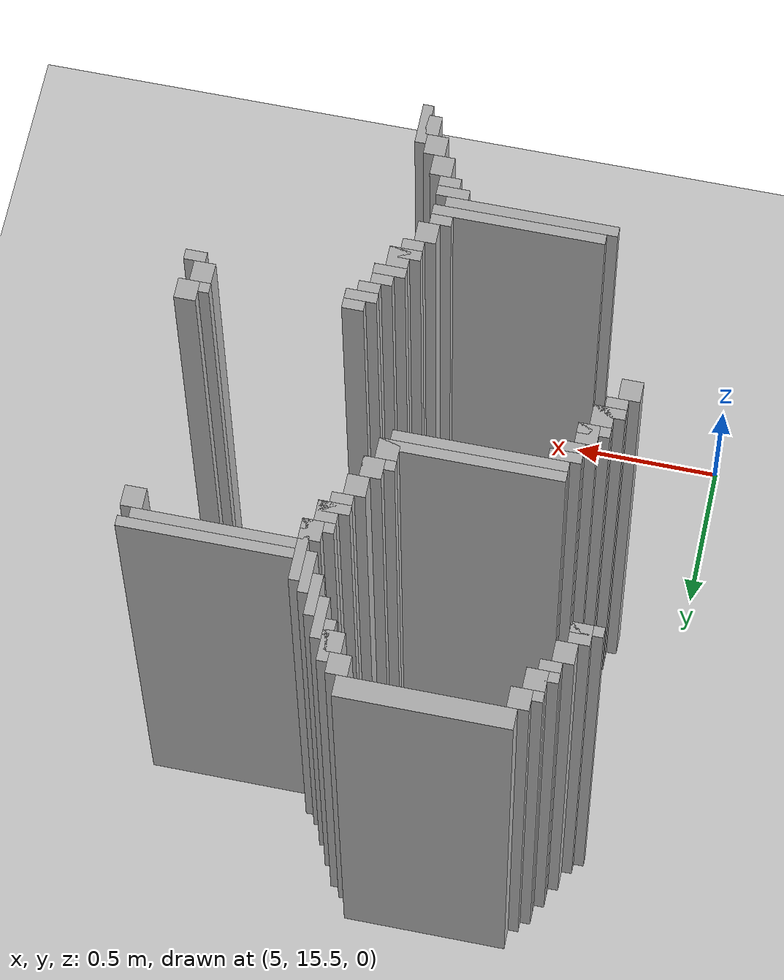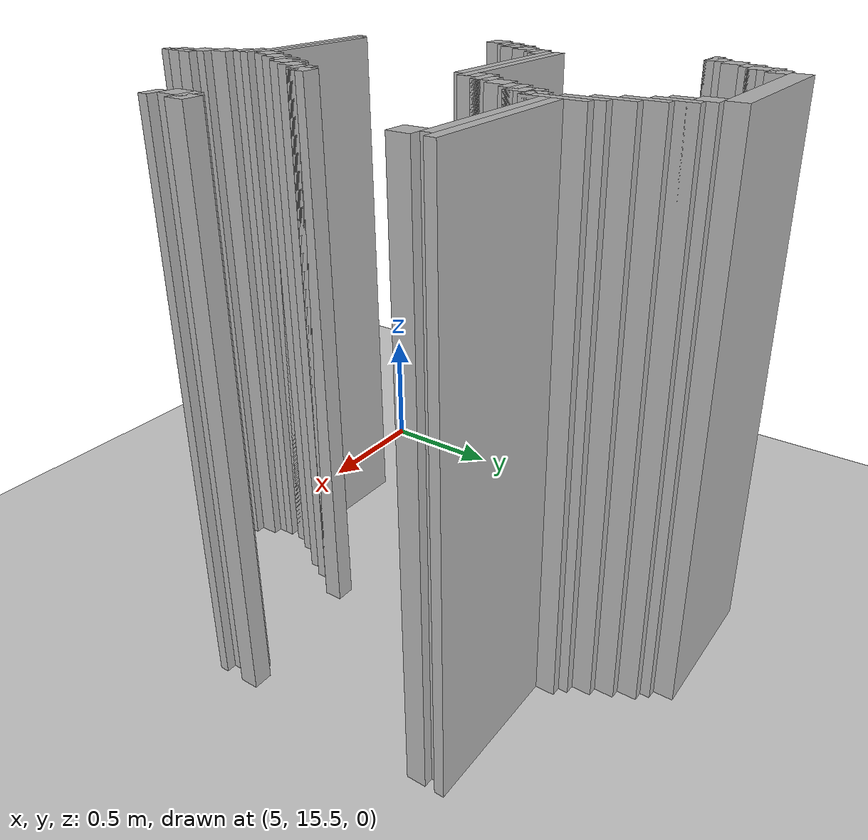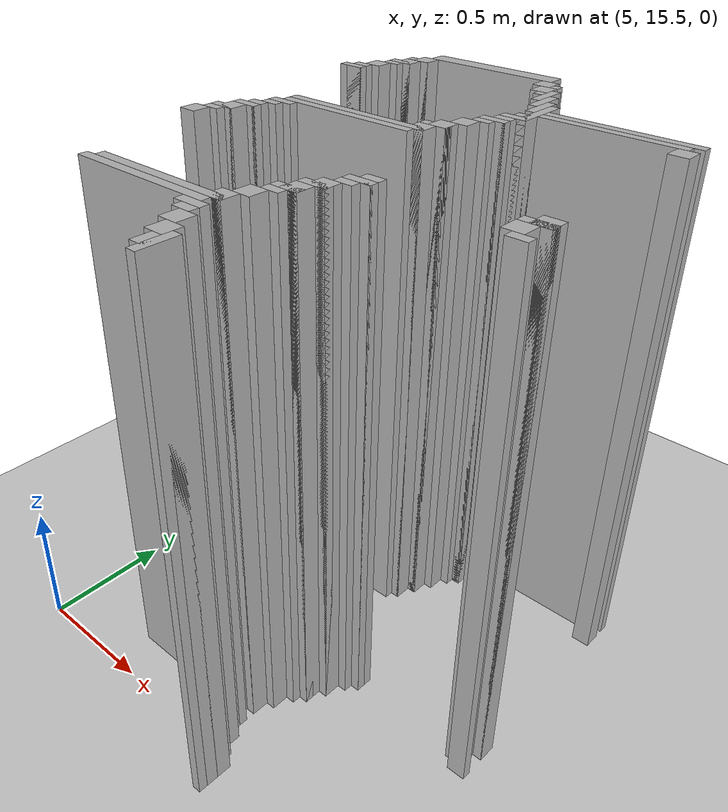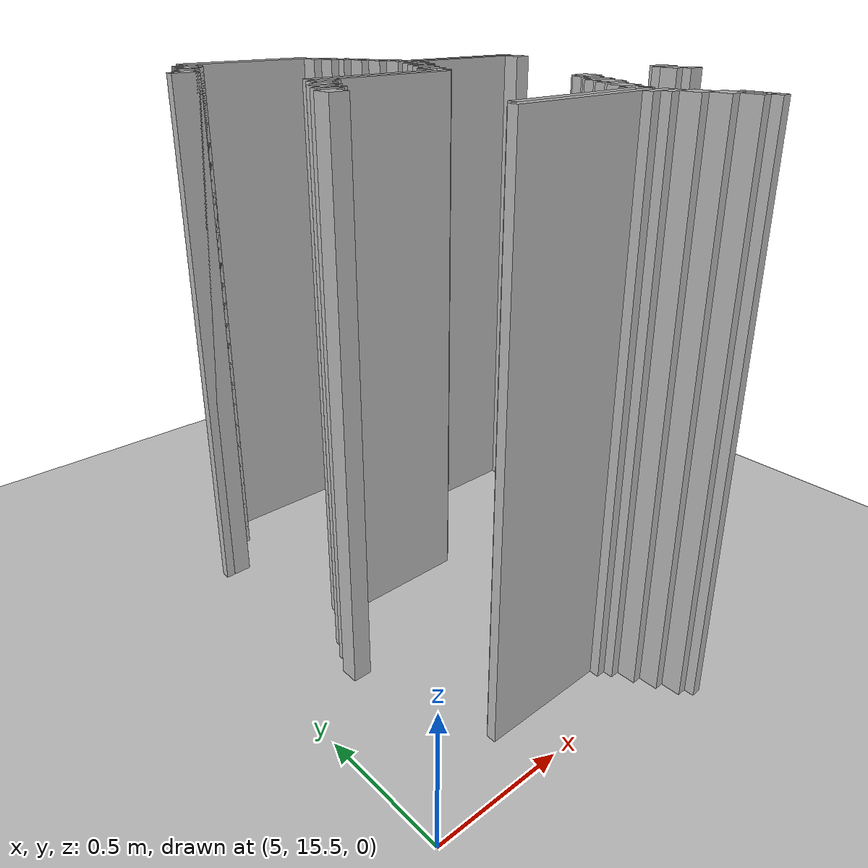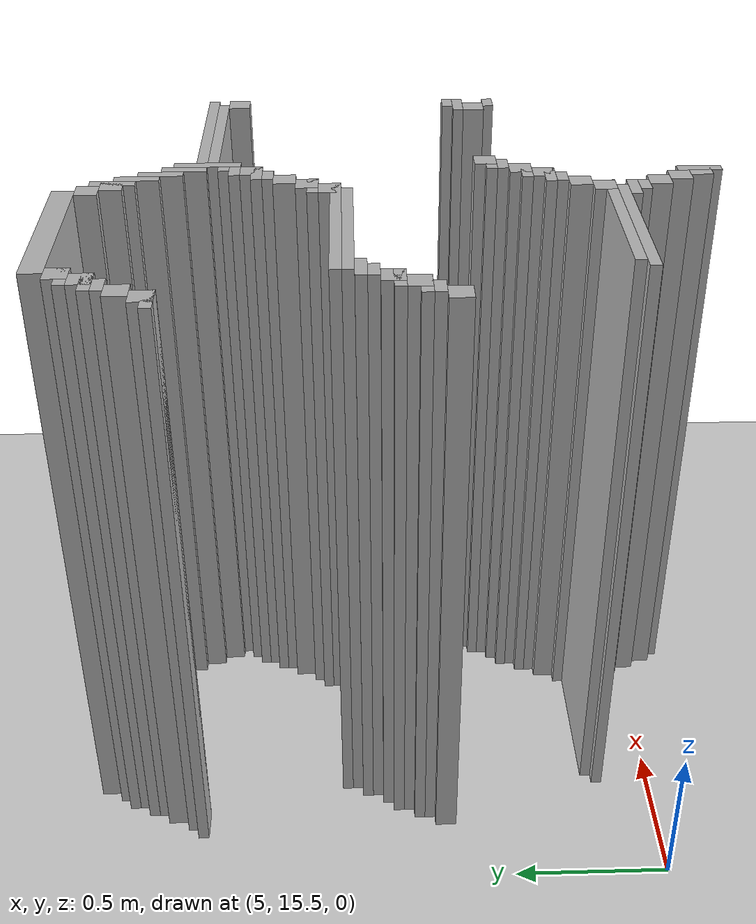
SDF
<sdf version="1.6">
 <world name="slam_world">
  <model name="ground_plane">
   <static>true</static>
   <link name="link">
    <collision name="collision">
     <geometry><plane><normal>0 0 1</normal><size>100 100</size></plane></geometry>
    </collision>
    <visual name="visual">
     <geometry><plane><normal>0 0 1</normal><size>100 100</size></plane></geometry>
     <material>
      <ambient>0.8 0.8 0.8 1</ambient>
      <diffuse>0.8 0.8 0.8 1</diffuse>
      <specular>0.8 0.8 0.8 1</specular>
     </material>
    </visual>
   </link>
  </model>
  <model name="wall_3">
   <static>true</static>
   <pose>5.672853828306264 17.366589327146173 1.0 0 0 0</pose>
   <link name="link">
    <collision name="collision">
     <geometry><box><size>0.5568445475638051 0.06960556844547564 2.0</size></box></geometry>
    </collision>
    <visual name="visual">
     <geometry><box><size>0.5568445475638051 0.06960556844547564 2.0</size></box></geometry>
     <material><ambient>0.5 0.5 0.5 1</ambient><diffuse>0.7 0.7 0.7 1</diffuse></material>
    </visual>
   </link>
  </model>
  <model name="wall_17">
   <static>true</static>
   <pose>5.3944315545243615 17.296983758700694 1.0 0 0 0</pose>
   <link name="link">
    <collision name="collision">
     <geometry><box><size>0.06960556844547564 0.06960556844547564 2.0</size></box></geometry>
    </collision>
    <visual name="visual">
     <geometry><box><size>0.06960556844547564 0.06960556844547564 2.0</size></box></geometry>
     <material><ambient>0.5 0.5 0.5 1</ambient><diffuse>0.7 0.7 0.7 1</diffuse></material>
    </visual>
   </link>
  </model>
  <model name="wall_18">
   <static>true</static>
   <pose>5.951276102088166 17.296983758700694 1.0 0 0 0</pose>
   <link name="link">
    <collision name="collision">
     <geometry><box><size>0.06960556844547564 0.06960556844547564 2.0</size></box></geometry>
    </collision>
    <visual name="visual">
     <geometry><box><size>0.06960556844547564 0.06960556844547564 2.0</size></box></geometry>
     <material><ambient>0.5 0.5 0.5 1</ambient><diffuse>0.7 0.7 0.7 1</diffuse></material>
    </visual>
   </link>
  </model>
  <model name="wall_37">
   <static>true</static>
   <pose>5.377030162412993 17.279582366589327 1.0 0 0 0</pose>
   <link name="link">
    <collision name="collision">
     <geometry><box><size>0.10440835266821345 0.03480278422273782 2.0</size></box></geometry>
    </collision>
    <visual name="visual">
     <geometry><box><size>0.10440835266821345 0.03480278422273782 2.0</size></box></geometry>
     <material><ambient>0.5 0.5 0.5 1</ambient><diffuse>0.7 0.7 0.7 1</diffuse></material>
    </visual>
   </link>
  </model>
  <model name="wall_38">
   <static>true</static>
   <pose>6.003480278422273 17.22737819025522 1.0 0 0 0</pose>
   <link name="link">
    <collision name="collision">
     <geometry><box><size>0.03480278422273782 0.13921113689095127 2.0</size></box></geometry>
    </collision>
    <visual name="visual">
     <geometry><box><size>0.03480278422273782 0.13921113689095127 2.0</size></box></geometry>
     <material><ambient>0.5 0.5 0.5 1</ambient><diffuse>0.7 0.7 0.7 1</diffuse></material>
    </visual>
   </link>
  </model>
  <model name="wall_57">
   <static>true</static>
   <pose>5.359628770301624 17.22737819025522 1.0 0 0 0</pose>
   <link name="link">
    <collision name="collision">
     <geometry><box><size>0.06960556844547564 0.06960556844547564 2.0</size></box></geometry>
    </collision>
    <visual name="visual">
     <geometry><box><size>0.06960556844547564 0.06960556844547564 2.0</size></box></geometry>
     <material><ambient>0.5 0.5 0.5 1</ambient><diffuse>0.7 0.7 0.7 1</diffuse></material>
    </visual>
   </link>
  </model>
  <model name="wall_58">
   <static>true</static>
   <pose>5.986078886310905 17.22737819025522 1.0 0 0 0</pose>
   <link name="link">
    <collision name="collision">
     <geometry><box><size>0.06960556844547564 0.06960556844547564 2.0</size></box></geometry>
    </collision>
    <visual name="visual">
     <geometry><box><size>0.06960556844547564 0.06960556844547564 2.0</size></box></geometry>
     <material><ambient>0.5 0.5 0.5 1</ambient><diffuse>0.7 0.7 0.7 1</diffuse></material>
    </visual>
   </link>
  </model>
  <model name="wall_77">
   <static>true</static>
   <pose>5.342227378190255 17.209976798143853 1.0 0 0 0</pose>
   <link name="link">
    <collision name="collision">
     <geometry><box><size>0.10440835266821345 0.03480278422273782 2.0</size></box></geometry>
    </collision>
    <visual name="visual">
     <geometry><box><size>0.10440835266821345 0.03480278422273782 2.0</size></box></geometry>
     <material><ambient>0.5 0.5 0.5 1</ambient><diffuse>0.7 0.7 0.7 1</diffuse></material>
    </visual>
   </link>
  </model>
  <model name="wall_78">
   <static>true</static>
   <pose>6.038283062645012 17.157772621809745 1.0 0 0 0</pose>
   <link name="link">
    <collision name="collision">
     <geometry><box><size>0.03480278422273782 0.13921113689095127 2.0</size></box></geometry>
    </collision>
    <visual name="visual">
     <geometry><box><size>0.03480278422273782 0.13921113689095127 2.0</size></box></geometry>
     <material><ambient>0.5 0.5 0.5 1</ambient><diffuse>0.7 0.7 0.7 1</diffuse></material>
    </visual>
   </link>
  </model>
  <model name="wall_94">
   <static>true</static>
   <pose>5.324825986078886 17.17517401392111 1.0 0 0 0</pose>
   <link name="link">
    <collision name="collision">
     <geometry><box><size>0.06960556844547564 0.03480278422273782 2.0</size></box></geometry>
    </collision>
    <visual name="visual">
     <geometry><box><size>0.06960556844547564 0.03480278422273782 2.0</size></box></geometry>
     <material><ambient>0.5 0.5 0.5 1</ambient><diffuse>0.7 0.7 0.7 1</diffuse></material>
    </visual>
   </link>
  </model>
  <model name="wall_107">
   <static>true</static>
   <pose>5.290023201856148 17.122969837587007 1.0 0 0 0</pose>
   <link name="link">
    <collision name="collision">
     <geometry><box><size>0.06960556844547564 0.06960556844547564 2.0</size></box></geometry>
    </collision>
    <visual name="visual">
     <geometry><box><size>0.06960556844547564 0.06960556844547564 2.0</size></box></geometry>
     <material><ambient>0.5 0.5 0.5 1</ambient><diffuse>0.7 0.7 0.7 1</diffuse></material>
    </visual>
   </link>
  </model>
  <model name="wall_108">
   <static>true</static>
   <pose>6.073085846867749 17.08816705336427 1.0 0 0 0</pose>
   <link name="link">
    <collision name="collision">
     <geometry><box><size>0.03480278422273782 0.13921113689095127 2.0</size></box></geometry>
    </collision>
    <visual name="visual">
     <geometry><box><size>0.03480278422273782 0.13921113689095127 2.0</size></box></geometry>
     <material><ambient>0.5 0.5 0.5 1</ambient><diffuse>0.7 0.7 0.7 1</diffuse></material>
    </visual>
   </link>
  </model>
  <model name="wall_127">
   <static>true</static>
   <pose>5.25522041763341 17.053364269141532 1.0 0 0 0</pose>
   <link name="link">
    <collision name="collision">
     <geometry><box><size>0.06960556844547564 0.06960556844547564 2.0</size></box></geometry>
    </collision>
    <visual name="visual">
     <geometry><box><size>0.06960556844547564 0.06960556844547564 2.0</size></box></geometry>
     <material><ambient>0.5 0.5 0.5 1</ambient><diffuse>0.7 0.7 0.7 1</diffuse></material>
    </visual>
   </link>
  </model>
  <model name="wall_128">
   <static>true</static>
   <pose>6.107888631090487 17.01856148491879 1.0 0 0 0</pose>
   <link name="link">
    <collision name="collision">
     <geometry><box><size>0.03480278422273782 0.13921113689095127 2.0</size></box></geometry>
    </collision>
    <visual name="visual">
     <geometry><box><size>0.03480278422273782 0.13921113689095127 2.0</size></box></geometry>
     <material><ambient>0.5 0.5 0.5 1</ambient><diffuse>0.7 0.7 0.7 1</diffuse></material>
    </visual>
   </link>
  </model>
  <model name="wall_147">
   <static>true</static>
   <pose>5.237819025522041 17.035962877030162 1.0 0 0 0</pose>
   <link name="link">
    <collision name="collision">
     <geometry><box><size>0.10440835266821345 0.03480278422273782 2.0</size></box></geometry>
    </collision>
    <visual name="visual">
     <geometry><box><size>0.10440835266821345 0.03480278422273782 2.0</size></box></geometry>
     <material><ambient>0.5 0.5 0.5 1</ambient><diffuse>0.7 0.7 0.7 1</diffuse></material>
    </visual>
   </link>
  </model>
  <model name="wall_148">
   <static>true</static>
   <pose>6.142691415313225 16.948955916473317 1.0 0 0 0</pose>
   <link name="link">
    <collision name="collision">
     <geometry><box><size>0.03480278422273782 0.2088167053364269 2.0</size></box></geometry>
    </collision>
    <visual name="visual">
     <geometry><box><size>0.03480278422273782 0.2088167053364269 2.0</size></box></geometry>
     <material><ambient>0.5 0.5 0.5 1</ambient><diffuse>0.7 0.7 0.7 1</diffuse></material>
    </visual>
   </link>
  </model>
  <model name="wall_175">
   <static>true</static>
   <pose>6.438515081206496 16.966357308584687 1.0 0 0 0</pose>
   <link name="link">
    <collision name="collision">
     <geometry><box><size>0.5568445475638051 0.03480278422273782 2.0</size></box></geometry>
    </collision>
    <visual name="visual">
     <geometry><box><size>0.5568445475638051 0.03480278422273782 2.0</size></box></geometry>
     <material><ambient>0.5 0.5 0.5 1</ambient><diffuse>0.7 0.7 0.7 1</diffuse></material>
    </visual>
   </link>
  </model>
  <model name="wall_186">
   <static>true</static>
   <pose>6.421113689095128 16.93155452436195 1.0 0 0 0</pose>
   <link name="link">
    <collision name="collision">
     <geometry><box><size>0.5220417633410672 0.03480278422273782 2.0</size></box></geometry>
    </collision>
    <visual name="visual">
     <geometry><box><size>0.5220417633410672 0.03480278422273782 2.0</size></box></geometry>
     <material><ambient>0.5 0.5 0.5 1</ambient><diffuse>0.7 0.7 0.7 1</diffuse></material>
    </visual>
   </link>
  </model>
  <model name="wall_195">
   <static>true</static>
   <pose>6.125290023201856 16.87935034802784 1.0 0 0 0</pose>
   <link name="link">
    <collision name="collision">
     <geometry><box><size>0.06960556844547564 0.06960556844547564 2.0</size></box></geometry>
    </collision>
    <visual name="visual">
     <geometry><box><size>0.06960556844547564 0.06960556844547564 2.0</size></box></geometry>
     <material><ambient>0.5 0.5 0.5 1</ambient><diffuse>0.7 0.7 0.7 1</diffuse></material>
    </visual>
   </link>
  </model>
  <model name="wall_196">
   <static>true</static>
   <pose>6.682134570765661 16.87935034802784 1.0 0 0 0</pose>
   <link name="link">
    <collision name="collision">
     <geometry><box><size>0.06960556844547564 0.06960556844547564 2.0</size></box></geometry>
    </collision>
    <visual name="visual">
     <geometry><box><size>0.06960556844547564 0.06960556844547564 2.0</size></box></geometry>
     <material><ambient>0.5 0.5 0.5 1</ambient><diffuse>0.7 0.7 0.7 1</diffuse></material>
    </visual>
   </link>
  </model>
  <model name="wall_205">
   <static>true</static>
   <pose>6.107888631090487 16.86194895591647 1.0 0 0 0</pose>
   <link name="link">
    <collision name="collision">
     <geometry><box><size>0.10440835266821345 0.03480278422273782 2.0</size></box></geometry>
    </collision>
    <visual name="visual">
     <geometry><box><size>0.10440835266821345 0.03480278422273782 2.0</size></box></geometry>
     <material><ambient>0.5 0.5 0.5 1</ambient><diffuse>0.7 0.7 0.7 1</diffuse></material>
    </visual>
   </link>
  </model>
  <model name="wall_215">
   <static>true</static>
   <pose>6.090487238979118 16.809744779582367 1.0 0 0 0</pose>
   <link name="link">
    <collision name="collision">
     <geometry><box><size>0.06960556844547564 0.06960556844547564 2.0</size></box></geometry>
    </collision>
    <visual name="visual">
     <geometry><box><size>0.06960556844547564 0.06960556844547564 2.0</size></box></geometry>
     <material><ambient>0.5 0.5 0.5 1</ambient><diffuse>0.7 0.7 0.7 1</diffuse></material>
    </visual>
   </link>
  </model>
  <model name="wall_225">
   <static>true</static>
   <pose>6.073085846867749 16.792343387470996 1.0 0 0 0</pose>
   <link name="link">
    <collision name="collision">
     <geometry><box><size>0.10440835266821345 0.03480278422273782 2.0</size></box></geometry>
    </collision>
    <visual name="visual">
     <geometry><box><size>0.10440835266821345 0.03480278422273782 2.0</size></box></geometry>
     <material><ambient>0.5 0.5 0.5 1</ambient><diffuse>0.7 0.7 0.7 1</diffuse></material>
    </visual>
   </link>
  </model>
  <model name="wall_234">
   <static>true</static>
   <pose>6.05568445475638 16.75754060324826 1.0 0 0 0</pose>
   <link name="link">
    <collision name="collision">
     <geometry><box><size>0.06960556844547564 0.03480278422273782 2.0</size></box></geometry>
    </collision>
    <visual name="visual">
     <geometry><box><size>0.06960556844547564 0.03480278422273782 2.0</size></box></geometry>
     <material><ambient>0.5 0.5 0.5 1</ambient><diffuse>0.7 0.7 0.7 1</diffuse></material>
    </visual>
   </link>
  </model>
  <model name="wall_241">
   <static>true</static>
   <pose>6.020881670533642 16.70533642691415 1.0 0 0 0</pose>
   <link name="link">
    <collision name="collision">
     <geometry><box><size>0.06960556844547564 0.06960556844547564 2.0</size></box></geometry>
    </collision>
    <visual name="visual">
     <geometry><box><size>0.06960556844547564 0.06960556844547564 2.0</size></box></geometry>
     <material><ambient>0.5 0.5 0.5 1</ambient><diffuse>0.7 0.7 0.7 1</diffuse></material>
    </visual>
   </link>
  </model>
  <model name="wall_251">
   <static>true</static>
   <pose>5.986078886310905 16.635730858468676 1.0 0 0 0</pose>
   <link name="link">
    <collision name="collision">
     <geometry><box><size>0.06960556844547564 0.06960556844547564 2.0</size></box></geometry>
    </collision>
    <visual name="visual">
     <geometry><box><size>0.06960556844547564 0.06960556844547564 2.0</size></box></geometry>
     <material><ambient>0.5 0.5 0.5 1</ambient><diffuse>0.7 0.7 0.7 1</diffuse></material>
    </visual>
   </link>
  </model>
  <model name="wall_261">
   <static>true</static>
   <pose>5.968677494199536 16.61832946635731 1.0 0 0 0</pose>
   <link name="link">
    <collision name="collision">
     <geometry><box><size>0.10440835266821345 0.03480278422273782 2.0</size></box></geometry>
    </collision>
    <visual name="visual">
     <geometry><box><size>0.10440835266821345 0.03480278422273782 2.0</size></box></geometry>
     <material><ambient>0.5 0.5 0.5 1</ambient><diffuse>0.7 0.7 0.7 1</diffuse></material>
    </visual>
   </link>
  </model>
  <model name="wall_270">
   <static>true</static>
   <pose>5.951276102088166 16.5661252900232 1.0 0 0 0</pose>
   <link name="link">
    <collision name="collision">
     <geometry><box><size>0.06960556844547564 0.06960556844547564 2.0</size></box></geometry>
    </collision>
    <visual name="visual">
     <geometry><box><size>0.06960556844547564 0.06960556844547564 2.0</size></box></geometry>
     <material><ambient>0.5 0.5 0.5 1</ambient><diffuse>0.7 0.7 0.7 1</diffuse></material>
    </visual>
   </link>
  </model>
  <model name="wall_278">
   <static>true</static>
   <pose>5.690255220417633 16.54872389791183 1.0 0 0 0</pose>
   <link name="link">
    <collision name="collision">
     <geometry><box><size>0.5916473317865429 0.03480278422273782 2.0</size></box></geometry>
    </collision>
    <visual name="visual">
     <geometry><box><size>0.5916473317865429 0.03480278422273782 2.0</size></box></geometry>
     <material><ambient>0.5 0.5 0.5 1</ambient><diffuse>0.7 0.7 0.7 1</diffuse></material>
    </visual>
   </link>
  </model>
  <model name="wall_289">
   <static>true</static>
   <pose>5.672853828306264 16.513921113689094 1.0 0 0 0</pose>
   <link name="link">
    <collision name="collision">
     <geometry><box><size>0.5568445475638051 0.03480278422273782 2.0</size></box></geometry>
    </collision>
    <visual name="visual">
     <geometry><box><size>0.5568445475638051 0.03480278422273782 2.0</size></box></geometry>
     <material><ambient>0.5 0.5 0.5 1</ambient><diffuse>0.7 0.7 0.7 1</diffuse></material>
    </visual>
   </link>
  </model>
  <model name="wall_297">
   <static>true</static>
   <pose>5.41183294663573 16.479118329466356 1.0 0 0 0</pose>
   <link name="link">
    <collision name="collision">
     <geometry><box><size>0.10440835266821345 0.03480278422273782 2.0</size></box></geometry>
    </collision>
    <visual name="visual">
     <geometry><box><size>0.10440835266821345 0.03480278422273782 2.0</size></box></geometry>
     <material><ambient>0.5 0.5 0.5 1</ambient><diffuse>0.7 0.7 0.7 1</diffuse></material>
    </visual>
   </link>
  </model>
  <model name="wall_309">
   <static>true</static>
   <pose>5.3944315545243615 16.44431554524362 1.0 0 0 0</pose>
   <link name="link">
    <collision name="collision">
     <geometry><box><size>0.06960556844547564 0.03480278422273782 2.0</size></box></geometry>
    </collision>
    <visual name="visual">
     <geometry><box><size>0.06960556844547564 0.03480278422273782 2.0</size></box></geometry>
     <material><ambient>0.5 0.5 0.5 1</ambient><diffuse>0.7 0.7 0.7 1</diffuse></material>
    </visual>
   </link>
  </model>
  <model name="wall_320">
   <static>true</static>
   <pose>5.359628770301624 16.39211136890951 1.0 0 0 0</pose>
   <link name="link">
    <collision name="collision">
     <geometry><box><size>0.06960556844547564 0.06960556844547564 2.0</size></box></geometry>
    </collision>
    <visual name="visual">
     <geometry><box><size>0.06960556844547564 0.06960556844547564 2.0</size></box></geometry>
     <material><ambient>0.5 0.5 0.5 1</ambient><diffuse>0.7 0.7 0.7 1</diffuse></material>
    </visual>
   </link>
  </model>
  <model name="wall_333">
   <static>true</static>
   <pose>5.342227378190255 16.374709976798144 1.0 0 0 0</pose>
   <link name="link">
    <collision name="collision">
     <geometry><box><size>0.10440835266821345 0.03480278422273782 2.0</size></box></geometry>
    </collision>
    <visual name="visual">
     <geometry><box><size>0.10440835266821345 0.03480278422273782 2.0</size></box></geometry>
     <material><ambient>0.5 0.5 0.5 1</ambient><diffuse>0.7 0.7 0.7 1</diffuse></material>
    </visual>
   </link>
  </model>
  <model name="wall_346">
   <static>true</static>
   <pose>5.324825986078886 16.322505800464036 1.0 0 0 0</pose>
   <link name="link">
    <collision name="collision">
     <geometry><box><size>0.06960556844547564 0.06960556844547564 2.0</size></box></geometry>
    </collision>
    <visual name="visual">
     <geometry><box><size>0.06960556844547564 0.06960556844547564 2.0</size></box></geometry>
     <material><ambient>0.5 0.5 0.5 1</ambient><diffuse>0.7 0.7 0.7 1</diffuse></material>
    </visual>
   </link>
  </model>
  <model name="wall_359">
   <static>true</static>
   <pose>5.307424593967517 16.30510440835267 1.0 0 0 0</pose>
   <link name="link">
    <collision name="collision">
     <geometry><box><size>0.10440835266821345 0.03480278422273782 2.0</size></box></geometry>
    </collision>
    <visual name="visual">
     <geometry><box><size>0.10440835266821345 0.03480278422273782 2.0</size></box></geometry>
     <material><ambient>0.5 0.5 0.5 1</ambient><diffuse>0.7 0.7 0.7 1</diffuse></material>
    </visual>
   </link>
  </model>
  <model name="wall_369">
   <static>true</static>
   <pose>5.290023201856148 16.270301624129928 1.0 0 0 0</pose>
   <link name="link">
    <collision name="collision">
     <geometry><box><size>0.06960556844547564 0.03480278422273782 2.0</size></box></geometry>
    </collision>
    <visual name="visual">
     <geometry><box><size>0.06960556844547564 0.03480278422273782 2.0</size></box></geometry>
     <material><ambient>0.5 0.5 0.5 1</ambient><diffuse>0.7 0.7 0.7 1</diffuse></material>
    </visual>
   </link>
  </model>
  <model name="wall_377">
   <static>true</static>
   <pose>5.25522041763341 16.218097447795824 1.0 0 0 0</pose>
   <link name="link">
    <collision name="collision">
     <geometry><box><size>0.06960556844547564 0.06960556844547564 2.0</size></box></geometry>
    </collision>
    <visual name="visual">
     <geometry><box><size>0.06960556844547564 0.06960556844547564 2.0</size></box></geometry>
     <material><ambient>0.5 0.5 0.5 1</ambient><diffuse>0.7 0.7 0.7 1</diffuse></material>
    </visual>
   </link>
  </model>
  <model name="wall_396">
   <static>true</static>
   <pose>6.682134570765661 16.14849187935035 1.0 0 0 0</pose>
   <link name="link">
    <collision name="collision">
     <geometry><box><size>0.06960556844547564 0.06960556844547564 2.0</size></box></geometry>
    </collision>
    <visual name="visual">
     <geometry><box><size>0.06960556844547564 0.06960556844547564 2.0</size></box></geometry>
     <material><ambient>0.5 0.5 0.5 1</ambient><diffuse>0.7 0.7 0.7 1</diffuse></material>
    </visual>
   </link>
  </model>
  <model name="wall_409">
   <static>true</static>
   <pose>6.664733178654292 16.13109048723898 1.0 0 0 0</pose>
   <link name="link">
    <collision name="collision">
     <geometry><box><size>0.10440835266821345 0.03480278422273782 2.0</size></box></geometry>
    </collision>
    <visual name="visual">
     <geometry><box><size>0.10440835266821345 0.03480278422273782 2.0</size></box></geometry>
     <material><ambient>0.5 0.5 0.5 1</ambient><diffuse>0.7 0.7 0.7 1</diffuse></material>
    </visual>
   </link>
  </model>
  <model name="wall_421">
   <static>true</static>
   <pose>6.1600928074245935 16.07888631090487 1.0 0 0 0</pose>
   <link name="link">
    <collision name="collision">
     <geometry><box><size>0.06960556844547564 0.06960556844547564 2.0</size></box></geometry>
    </collision>
    <visual name="visual">
     <geometry><box><size>0.06960556844547564 0.06960556844547564 2.0</size></box></geometry>
     <material><ambient>0.5 0.5 0.5 1</ambient><diffuse>0.7 0.7 0.7 1</diffuse></material>
    </visual>
   </link>
  </model>
  <model name="wall_422">
   <static>true</static>
   <pose>6.647331786542924 16.07888631090487 1.0 0 0 0</pose>
   <link name="link">
    <collision name="collision">
     <geometry><box><size>0.06960556844547564 0.06960556844547564 2.0</size></box></geometry>
    </collision>
    <visual name="visual">
     <geometry><box><size>0.06960556844547564 0.06960556844547564 2.0</size></box></geometry>
     <material><ambient>0.5 0.5 0.5 1</ambient><diffuse>0.7 0.7 0.7 1</diffuse></material>
    </visual>
   </link>
  </model>
  <model name="wall_434">
   <static>true</static>
   <pose>6.142691415313225 16.061484918793504 1.0 0 0 0</pose>
   <link name="link">
    <collision name="collision">
     <geometry><box><size>0.10440835266821345 0.03480278422273782 2.0</size></box></geometry>
    </collision>
    <visual name="visual">
     <geometry><box><size>0.10440835266821345 0.03480278422273782 2.0</size></box></geometry>
     <material><ambient>0.5 0.5 0.5 1</ambient><diffuse>0.7 0.7 0.7 1</diffuse></material>
    </visual>
   </link>
  </model>
  <model name="wall_449">
   <static>true</static>
   <pose>6.125290023201856 16.026682134570766 1.0 0 0 0</pose>
   <link name="link">
    <collision name="collision">
     <geometry><box><size>0.06960556844547564 0.03480278422273782 2.0</size></box></geometry>
    </collision>
    <visual name="visual">
     <geometry><box><size>0.06960556844547564 0.03480278422273782 2.0</size></box></geometry>
     <material><ambient>0.5 0.5 0.5 1</ambient><diffuse>0.7 0.7 0.7 1</diffuse></material>
    </visual>
   </link>
  </model>
  <model name="wall_450">
   <static>true</static>
   <pose>6.682134570765661 16.026682134570766 1.0 0 0 0</pose>
   <link name="link">
    <collision name="collision">
     <geometry><box><size>0.06960556844547564 0.03480278422273782 2.0</size></box></geometry>
    </collision>
    <visual name="visual">
     <geometry><box><size>0.06960556844547564 0.03480278422273782 2.0</size></box></geometry>
     <material><ambient>0.5 0.5 0.5 1</ambient><diffuse>0.7 0.7 0.7 1</diffuse></material>
    </visual>
   </link>
  </model>
  <model name="wall_464">
   <static>true</static>
   <pose>6.090487238979118 15.974477958236658 1.0 0 0 0</pose>
   <link name="link">
    <collision name="collision">
     <geometry><box><size>0.06960556844547564 0.06960556844547564 2.0</size></box></geometry>
    </collision>
    <visual name="visual">
     <geometry><box><size>0.06960556844547564 0.06960556844547564 2.0</size></box></geometry>
     <material><ambient>0.5 0.5 0.5 1</ambient><diffuse>0.7 0.7 0.7 1</diffuse></material>
    </visual>
   </link>
  </model>
  <model name="wall_479">
   <static>true</static>
   <pose>6.073085846867749 15.95707656612529 1.0 0 0 0</pose>
   <link name="link">
    <collision name="collision">
     <geometry><box><size>0.10440835266821345 0.03480278422273782 2.0</size></box></geometry>
    </collision>
    <visual name="visual">
     <geometry><box><size>0.10440835266821345 0.03480278422273782 2.0</size></box></geometry>
     <material><ambient>0.5 0.5 0.5 1</ambient><diffuse>0.7 0.7 0.7 1</diffuse></material>
    </visual>
   </link>
  </model>
  <model name="wall_492">
   <static>true</static>
   <pose>6.05568445475638 15.904872389791183 1.0 0 0 0</pose>
   <link name="link">
    <collision name="collision">
     <geometry><box><size>0.06960556844547564 0.06960556844547564 2.0</size></box></geometry>
    </collision>
    <visual name="visual">
     <geometry><box><size>0.06960556844547564 0.06960556844547564 2.0</size></box></geometry>
     <material><ambient>0.5 0.5 0.5 1</ambient><diffuse>0.7 0.7 0.7 1</diffuse></material>
    </visual>
   </link>
  </model>
  <model name="wall_503">
   <static>true</static>
   <pose>6.038283062645012 15.887470997679813 1.0 0 0 0</pose>
   <link name="link">
    <collision name="collision">
     <geometry><box><size>0.10440835266821345 0.03480278422273782 2.0</size></box></geometry>
    </collision>
    <visual name="visual">
     <geometry><box><size>0.10440835266821345 0.03480278422273782 2.0</size></box></geometry>
     <material><ambient>0.5 0.5 0.5 1</ambient><diffuse>0.7 0.7 0.7 1</diffuse></material>
    </visual>
   </link>
  </model>
  <model name="wall_516">
   <static>true</static>
   <pose>6.020881670533642 15.852668213457076 1.0 0 0 0</pose>
   <link name="link">
    <collision name="collision">
     <geometry><box><size>0.06960556844547564 0.03480278422273782 2.0</size></box></geometry>
    </collision>
    <visual name="visual">
     <geometry><box><size>0.06960556844547564 0.03480278422273782 2.0</size></box></geometry>
     <material><ambient>0.5 0.5 0.5 1</ambient><diffuse>0.7 0.7 0.7 1</diffuse></material>
    </visual>
   </link>
  </model>
  <model name="wall_526">
   <static>true</static>
   <pose>5.986078886310905 15.80046403712297 1.0 0 0 0</pose>
   <link name="link">
    <collision name="collision">
     <geometry><box><size>0.06960556844547564 0.06960556844547564 2.0</size></box></geometry>
    </collision>
    <visual name="visual">
     <geometry><box><size>0.06960556844547564 0.06960556844547564 2.0</size></box></geometry>
     <material><ambient>0.5 0.5 0.5 1</ambient><diffuse>0.7 0.7 0.7 1</diffuse></material>
    </visual>
   </link>
  </model>
  <model name="wall_541">
   <static>true</static>
   <pose>5.951276102088166 15.730858468677493 1.0 0 0 0</pose>
   <link name="link">
    <collision name="collision">
     <geometry><box><size>0.06960556844547564 0.06960556844547564 2.0</size></box></geometry>
    </collision>
    <visual name="visual">
     <geometry><box><size>0.06960556844547564 0.06960556844547564 2.0</size></box></geometry>
     <material><ambient>0.5 0.5 0.5 1</ambient><diffuse>0.7 0.7 0.7 1</diffuse></material>
    </visual>
   </link>
  </model>
  <model name="wall_556">
   <static>true</static>
   <pose>5.707656612529002 15.713457076566124 1.0 0 0 0</pose>
   <link name="link">
    <collision name="collision">
     <geometry><box><size>0.5568445475638051 0.03480278422273782 2.0</size></box></geometry>
    </collision>
    <visual name="visual">
     <geometry><box><size>0.5568445475638051 0.03480278422273782 2.0</size></box></geometry>
     <material><ambient>0.5 0.5 0.5 1</ambient><diffuse>0.7 0.7 0.7 1</diffuse></material>
    </visual>
   </link>
  </model>
  <model name="wall_568">
   <static>true</static>
   <pose>5.672853828306264 15.678654292343387 1.0 0 0 0</pose>
   <link name="link">
    <collision name="collision">
     <geometry><box><size>0.5568445475638051 0.03480278422273782 2.0</size></box></geometry>
    </collision>
    <visual name="visual">
     <geometry><box><size>0.5568445475638051 0.03480278422273782 2.0</size></box></geometry>
     <material><ambient>0.5 0.5 0.5 1</ambient><diffuse>0.7 0.7 0.7 1</diffuse></material>
    </visual>
   </link>
  </model>
  <model name="wall_582">
   <static>true</static>
   <pose>5.933874709976798 15.64385150812065 1.0 0 0 0</pose>
   <link name="link">
    <collision name="collision">
     <geometry><box><size>0.10440835266821345 0.03480278422273782 2.0</size></box></geometry>
    </collision>
    <visual name="visual">
     <geometry><box><size>0.10440835266821345 0.03480278422273782 2.0</size></box></geometry>
     <material><ambient>0.5 0.5 0.5 1</ambient><diffuse>0.7 0.7 0.7 1</diffuse></material>
    </visual>
   </link>
  </model>
  <model name="wall_601">
   <static>true</static>
   <pose>5.951276102088166 15.609048723897912 1.0 0 0 0</pose>
   <link name="link">
    <collision name="collision">
     <geometry><box><size>0.06960556844547564 0.03480278422273782 2.0</size></box></geometry>
    </collision>
    <visual name="visual">
     <geometry><box><size>0.06960556844547564 0.03480278422273782 2.0</size></box></geometry>
     <material><ambient>0.5 0.5 0.5 1</ambient><diffuse>0.7 0.7 0.7 1</diffuse></material>
    </visual>
   </link>
  </model>
  <model name="wall_617">
   <static>true</static>
   <pose>5.986078886310905 15.556844547563804 1.0 0 0 0</pose>
   <link name="link">
    <collision name="collision">
     <geometry><box><size>0.06960556844547564 0.06960556844547564 2.0</size></box></geometry>
    </collision>
    <visual name="visual">
     <geometry><box><size>0.06960556844547564 0.06960556844547564 2.0</size></box></geometry>
     <material><ambient>0.5 0.5 0.5 1</ambient><diffuse>0.7 0.7 0.7 1</diffuse></material>
    </visual>
   </link>
  </model>
  <model name="wall_633">
   <static>true</static>
   <pose>6.020881670533642 15.48723897911833 1.0 0 0 0</pose>
   <link name="link">
    <collision name="collision">
     <geometry><box><size>0.06960556844547564 0.06960556844547564 2.0</size></box></geometry>
    </collision>
    <visual name="visual">
     <geometry><box><size>0.06960556844547564 0.06960556844547564 2.0</size></box></geometry>
     <material><ambient>0.5 0.5 0.5 1</ambient><diffuse>0.7 0.7 0.7 1</diffuse></material>
    </visual>
   </link>
  </model>
  <model name="wall_649">
   <static>true</static>
   <pose>6.073085846867749 15.417633410672853 1.0 0 0 0</pose>
   <link name="link">
    <collision name="collision">
     <geometry><box><size>0.03480278422273782 0.13921113689095127 2.0</size></box></geometry>
    </collision>
    <visual name="visual">
     <geometry><box><size>0.03480278422273782 0.13921113689095127 2.0</size></box></geometry>
     <material><ambient>0.5 0.5 0.5 1</ambient><diffuse>0.7 0.7 0.7 1</diffuse></material>
    </visual>
   </link>
  </model>
  <model name="wall_663">
   <static>true</static>
   <pose>6.05568445475638 15.417633410672853 1.0 0 0 0</pose>
   <link name="link">
    <collision name="collision">
     <geometry><box><size>0.06960556844547564 0.06960556844547564 2.0</size></box></geometry>
    </collision>
    <visual name="visual">
     <geometry><box><size>0.06960556844547564 0.06960556844547564 2.0</size></box></geometry>
     <material><ambient>0.5 0.5 0.5 1</ambient><diffuse>0.7 0.7 0.7 1</diffuse></material>
    </visual>
   </link>
  </model>
 </world>
</sdf>
